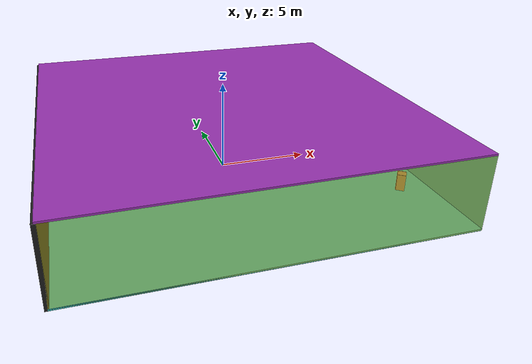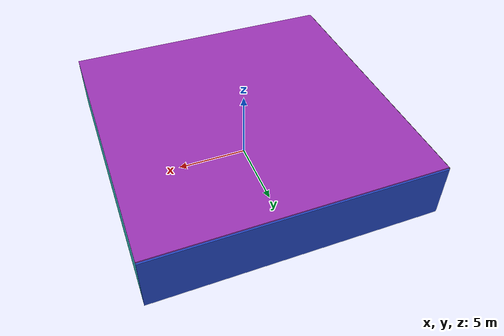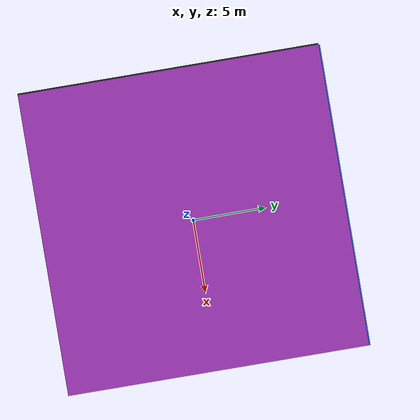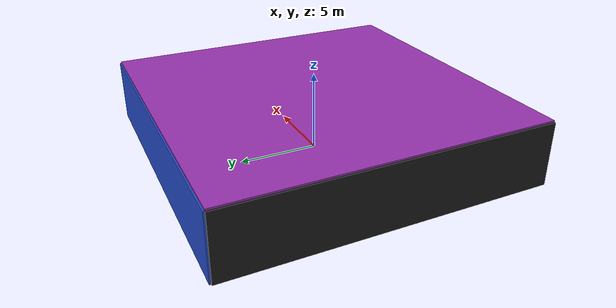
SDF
<sdf version="1.4">
 <world name="default">
  <physics type="ode">
   <max_step_size>0.001</max_step_size>
   <real_time_factor>1</real_time_factor>
   <real_time_update_rate>1000</real_time_update_rate>
   <gravity>0 0 -9.8</gravity>
  </physics>
  <scene><ambient>0.4 0.4 0.4 1</ambient><background>0.7 0.7 0.7 1</background><shadows>1</shadows></scene>
  <model name="Surrounding">
   <static>1</static>
   <link name="Ceiling">
    <collision name="Ceiling_Collision"><geometry><box><size>20 20 0.1</size></box></geometry></collision>
    <visual name="Ceiling_Visual">
     <geometry><box><size>20 20 0.1</size></box></geometry>
     <material>
      <script><uri>file://media/materials/scripts/gazebo.material</uri><name>Gazebo/PurpleGlow</name></script>
     </material>
    </visual>
    <pose>0 0 4.05 0 0 0</pose>
   </link>
   <link name="Wall_South">
    <collision name="Wall_South_Collision">
     <geometry><box><size>20 0 4</size></box></geometry>
     <pose>0 0 2 0 -0 0</pose>
    </collision>
    <visual name="Wall_South_Visual">
     <pose>0 0 2 0 -0 0</pose>
     <geometry><box><size>20 0 4</size></box></geometry>
     <material>
      <script>
       <uri>file://media/materials/scripts/gazebo.material</uri>
       <name>Gazebo/YellowTransparent</name>
      </script>
     </material>
    </visual>
    <velocity_decay><linear>0</linear><angular>0</angular></velocity_decay>
    <pose>0 -10 0 0 -0 0</pose>
   </link>
   <link name="Wall_East">
    <collision name="Wall_21_Collision">
     <geometry><box><size>20 0 4</size></box></geometry>
     <pose>0 0 2 0 -0 0</pose>
    </collision>
    <visual name="Wall_21_Visual">
     <pose>0 0 2 0 -0 0</pose>
     <geometry><box><size>20 0 4</size></box></geometry>
     <material>
      <script><uri>file://media/materials/scripts/gazebo.material</uri><name>Gazebo/TurquoiseGlow</name></script>
     </material>
    </visual>
    <velocity_decay><linear>0</linear><angular>0</angular></velocity_decay>
    <pose>10 0 0 0 -0 1.5708</pose>
   </link>
   <link name="Wall_North">
    <collision name="Wall_22_Collision">
     <geometry><box><size>20 0.2 4</size></box></geometry>
     <pose>0 0 2 0 -0 0</pose>
    </collision>
    <visual name="Wall_22_Visual">
     <pose>0 0 2 0 -0 0</pose>
     <geometry><box><size>20 0.2 4</size></box></geometry>
     <material>
      <script><uri>file://media/materials/scripts/gazebo.material</uri><name>Gazebo/Blue</name></script>
     </material>
    </visual>
    <velocity_decay><linear>0</linear><angular>0</angular></velocity_decay>
    <pose>0 10 0 0 -0 0</pose>
   </link>
   <link name="Wall_West">
    <collision name="Wall_23_Collision">
     <geometry><box><size>20 0.2 4</size></box></geometry>
     <pose>0 0 2 0 -0 0</pose>
    </collision>
    <visual name="Wall_23_Visual">
     <pose>0 0 2 0 -0 0</pose>
     <geometry><box><size>20 0.2 4</size></box></geometry>
     <material>
      <script><uri>file://media/materials/scripts/gazebo.material</uri><name>Gazebo/FlatBlack</name></script>
     </material>
    </visual>
    <velocity_decay><linear>0</linear><angular>0</angular></velocity_decay>
    <pose>-10 0 0 0 0 -1.5708</pose>
   </link>
   <link name="Ground_link">
    <collision name="collision">
     <pose>0 0 .05 0 -0 0</pose>
     <geometry><box><size>20 20 0.1</size></box></geometry>
    </collision>
    <visual name="visual">
     <pose>0 0 .05 0 -0 0</pose>
     <geometry><box><size>20 20 0.1</size></box></geometry>
     <material>
      <script>
       <uri>file://media/materials/scripts/gazebo.material</uri>
       <name>Gazebo/TurquoiseGlowOutline</name>
      </script>
     </material>
    </visual>
   </link>
   <static>1</static>
  </model>
  <spherical_coordinates>
   <surface_model>EARTH_WGS84</surface_model>
   <latitude_deg>0</latitude_deg>
   <longitude_deg>0</longitude_deg>
   <elevation>0</elevation>
   <heading_deg>0</heading_deg>
  </spherical_coordinates>
  <light name="lightball_0" type="diffuse">
   <diffuse>0.8 0.8 0.8 1</diffuse>
   <specular>0.2 0.2 0.2 1</specular>
   <attenuation>
    <range>100</range>
    <constant>0.7</constant>
    <linear>0.01</linear>
    <quadratic>0.001</quadratic>
   </attenuation>
   <direction>-0.5 0.1 -0.9</direction>
   <pose>-6.12892660825 -7.9216156755 1.74247651029 0 0 0</pose>
  </light>
  <light name="lightball_1" type="diffuse">
   <diffuse>0.8 0.8 0.8 1</diffuse>
   <specular>0.2 0.2 0.2 1</specular>
   <attenuation>
    <range>100</range>
    <constant>0.7</constant>
    <linear>0.01</linear>
    <quadratic>0.001</quadratic>
   </attenuation>
   <direction>-0.5 0.1 -0.9</direction>
   <pose>-1.48973386366 6.16438694061 3.48172664107 0 0 0</pose>
  </light>
  <light name="lightball_2" type="diffuse">
   <diffuse>0.8 0.8 0.8 1</diffuse>
   <specular>0.2 0.2 0.2 1</specular>
   <attenuation>
    <range>100</range>
    <constant>0.7</constant>
    <linear>0.01</linear>
    <quadratic>0.001</quadratic>
   </attenuation>
   <direction>-0.5 0.1 -0.9</direction>
   <pose>-1.89960099381 8.44617255971 2.85806759126 0 0 0</pose>
  </light>
  <light name="lightball_3" type="diffuse">
   <diffuse>0.8 0.8 0.8 1</diffuse>
   <specular>0.2 0.2 0.2 1</specular>
   <attenuation>
    <range>100</range>
    <constant>0.7</constant>
    <linear>0.01</linear>
    <quadratic>0.001</quadratic>
   </attenuation>
   <direction>-0.5 0.1 -0.9</direction>
   <pose>2.39511043629 7.59128436322 3.56131761995 0 0 0</pose>
  </light>
  <light name="lightball_4" type="diffuse">
   <diffuse>0.8 0.8 0.8 1</diffuse>
   <specular>0.2 0.2 0.2 1</specular>
   <attenuation>
    <range>100</range>
    <constant>0.7</constant>
    <linear>0.01</linear>
    <quadratic>0.001</quadratic>
   </attenuation>
   <direction>-0.5 0.1 -0.9</direction>
   <pose>-3.36630295187 1.61991599014 2.95298126371 0 0 0</pose>
  </light>
  <include><uri>model://table</uri><pose>-5.46391648678 7.52855652999 0 0 0 2.41990592478</pose></include>
  <include><uri>model://cabinet</uri><pose>8.39554269058 -5.48654201718 0 0 0 2.52285429547</pose></include>
 </world>
</sdf>

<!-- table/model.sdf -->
<sdf version="1.5">
  <model name="table">
    <static>true</static>
    <link name="link">
      <collision name="surface">
        <pose>0 0 1.0 0 0 0</pose>
        <geometry>
          <box>
            <size>1.5 0.8 0.03</size>
          </box>
        </geometry>
        <surface>
          <friction>
            <ode>
              <mu>0.6</mu>
              <mu2>0.6</mu2>
            </ode>
          </friction>
        </surface>
      </collision>
      <visual name="visual1">
        <pose>0 0 1.0 0 0 0</pose>
        <geometry>
          <box>
            <size>1.5 0.8 0.03</size>
          </box>
        </geometry>
        <material>
          <script>
            <uri>model://media/materials/scripts/gazebo.material</uri>
            <name>Gazebo/Wood</name>
          </script>
        </material>
      </visual>
      <collision name="front_left_leg">
        <pose>0.68 0.38 0.5 0 0 0</pose>
        <geometry>
          <cylinder>
            <radius>0.02</radius>
            <length>1.0</length>
          </cylinder>
        </geometry>
      </collision>
      <visual name="front_left_leg">
        <pose>0.68 0.38 0.5 0 0 0</pose>
        <geometry>
          <cylinder>
            <radius>0.02</radius>
            <length>1.0</length>
          </cylinder>
        </geometry>
        <material>
          <script>
            <uri>model://media/materials/scripts/gazebo.material</uri>
            <name>Gazebo/Grey</name>
          </script>
        </material>
      </visual>
      <collision name="front_right_leg">
        <pose>0.68 -0.38 0.5 0 0 0</pose>
        <geometry>
          <cylinder>
            <radius>0.02</radius>
            <length>1.0</length>
          </cylinder>
        </geometry>
      </collision>
      <visual name="front_right_leg">
        <pose>0.68 -0.38 0.5 0 0 0</pose>
        <geometry>
          <cylinder>
            <radius>0.02</radius>
            <length>1.0</length>
          </cylinder>
        </geometry>
        <material>
          <script>
            <uri>model://media/materials/scripts/gazebo.material</uri>
            <name>Gazebo/Grey</name>
          </script>
        </material>
      </visual>
      <collision name="back_right_leg">
        <pose>-0.68 -0.38 0.5 0 0 0</pose>
        <geometry>
          <cylinder>
            <radius>0.02</radius>
            <length>1.0</length>
          </cylinder>
        </geometry>
      </collision>
      <visual name="back_right_leg">
        <pose>-0.68 -0.38 0.5 0 0 0</pose>
        <geometry>
          <cylinder>
            <radius>0.02</radius>
            <length>1.0</length>
          </cylinder>
        </geometry>
        <material>
          <script>
            <uri>model://media/materials/scripts/gazebo.material</uri>
            <name>Gazebo/Grey</name>
          </script>
        </material>
      </visual>
      <collision name="back_left_leg">
        <pose>-0.68 0.38 0.5 0 0 0</pose>
        <geometry>
          <cylinder>
            <radius>0.02</radius>
            <length>1.0</length>
          </cylinder>
        </geometry>
      </collision>
      <visual name="back_left_leg">
        <pose>-0.68 0.38 0.5 0 0 0</pose>
        <geometry>
          <cylinder>
            <radius>0.02</radius>
            <length>1.0</length>
          </cylinder>
        </geometry>
        <material>
          <script>
            <uri>model://media/materials/scripts/gazebo.material</uri>
            <name>Gazebo/Grey</name>
          </script>
        </material>
      </visual>
    </link>
  </model>
</sdf>

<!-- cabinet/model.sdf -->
<sdf version="1.5">
  <model name="cabinet">
    <static>true</static>
    <link name="cabinet_bottom_plate">
      <inertial>
        <pose>0 0 -1 0 0 0</pose>
        <inertia>
          <ixx>2.050000</ixx>
          <ixy>0</ixy>
          <ixz>0</ixz>
          <iyy>2.050000</iyy>
          <iyz>0</iyz>
          <izz>2.050000</izz>
        </inertia>
        <mass>25.000000</mass>
      </inertial>
      <collision name="cabinet_bottom_plate_geom">
        <pose>0 0 0.010000 0 0 0</pose>
        <geometry>
          <box>
            <size>0.450000 0.450000 0.020000</size>
          </box>
        </geometry>
      </collision>
      <visual name="cabinet_bottom_plate_geom_visual">
        <pose>0 0 0.010000 0 0 0</pose>
        <geometry>
          <box>
            <size>0.450000 0.450000 0.020000</size>
          </box>
        </geometry>
        <material>
          <script>
            <uri>model://media/materials/scripts/gazebo.material</uri>
            <name>Gazebo/Wood</name>
          </script>
        </material>
      </visual>
      <collision name="cabinet_bottom_plate_geom_cabinet_back_plate">
        <pose>0.235000 0 0.510000 0 0 0</pose>
        <geometry>
          <box>
            <size>0.020000 0.450000 1.020000</size>
          </box>
        </geometry>
      </collision>
      <visual name="cabinet_bottom_plate_geom_cabinet_back_plate_visual">
        <pose>0.235000 0 0.510000 0 0 0</pose>
        <geometry>
          <box>
            <size>0.020000 0.450000 1.020000</size>
          </box>
        </geometry>
        <material>
          <script>
            <uri>model://media/materials/scripts/gazebo.material</uri>
            <name>Gazebo/Wood</name>
          </script>
        </material>
      </visual>
      <collision name="cabinet_bottom_plate_geom_cabinet_left_plate">
        <pose>0 0.235000 0.510000 0 0 0</pose>
        <geometry>
          <box>
            <size>0.450000 0.020000 1.020000</size>
          </box>
        </geometry>
      </collision>
      <visual name="cabinet_bottom_plate_geom_cabinet_left_plate_visual">
        <pose>0 0.235000 0.510000 0 0 0</pose>
        <geometry>
          <box>
            <size>0.450000 0.020000 1.020000</size>
          </box>
        </geometry>
        <material>
          <script>
            <uri>model://media/materials/scripts/gazebo.material</uri>
            <name>Gazebo/Wood</name>
          </script>
        </material>
      </visual>
      <collision name="cabinet_bottom_plate_geom_cabinet_middle_plate">
        <pose>0 0 0.510000 0 0 0</pose>
        <geometry>
          <box>
            <size>0.450000 0.450000 0.020000</size>
          </box>
        </geometry>
      </collision>
      <visual name="cabinet_bottom_plate_geom_cabinet_middle_plate_visual">
        <pose>0 0 0.510000 0 0 0</pose>
        <geometry>
          <box>
            <size>0.450000 0.450000 0.020000</size>
          </box>
        </geometry>
        <material>
          <script>
            <uri>model://media/materials/scripts/gazebo.material</uri>
            <name>Gazebo/Wood</name>
          </script>
        </material>
      </visual>
      <collision name="cabinet_bottom_plate_geom_cabinet_right_plate">
        <pose>0 -0.235000 0.510000 0 0 0</pose>
        <geometry>
          <box>
            <size>0.450000 0.020000 1.020000</size>
          </box>
        </geometry>
      </collision>
      <visual name="cabinet_bottom_plate_geom_cabinet_right_plate_visual">
        <pose>0 -0.235000 0.510000 0 0 0</pose>
        <geometry>
          <box>
            <size>0.450000 0.020000 1.020000</size>
          </box>
        </geometry>
        <material>
          <script>
            <uri>model://media/materials/scripts/gazebo.material</uri>
            <name>Gazebo/Wood</name>
          </script>
        </material>
      </visual>
      <collision name="cabinet_bottom_plate_geom_cabinet_top_plate">
        <pose>0 0 1.010000 0 0 0</pose>
        <geometry>
          <box>
            <size>0.450000 0.450000 0.020000</size>
          </box>
        </geometry>
      </collision>
      <visual name="cabinet_bottom_plate_geom_cabinet_top_plate_visual">
        <pose>0 0 1.010000 0 0 0</pose>
        <geometry>
          <box>
            <size>0.450000 0.450000 0.020000</size>
          </box>
        </geometry>
        <material>
          <script>
            <uri>model://media/materials/scripts/gazebo.material</uri>
            <name>Gazebo/Wood</name>
          </script>
        </material>
      </visual>
    </link>
  </model>
</sdf>
